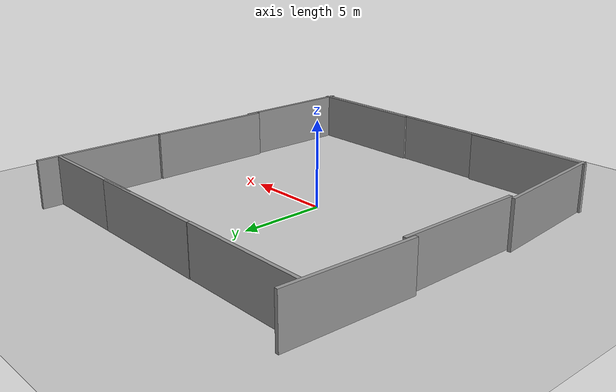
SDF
<sdf version="1.6">
 <world name="default">
  <light name="sun" type="directional">
   <pose>0 0 10 0 -0 0</pose>
   <diffuse>0.8 0.8 0.8 1</diffuse>
   <specular>0.2 0.2 0.2 1</specular>
   <attenuation>
    <range>1000</range>
    <constant>0.9</constant>
    <linear>0.01</linear>
    <quadratic>0.001</quadratic>
   </attenuation>
   <direction>-0.5 0.1 -0.9</direction>
  </light>
  <model name="ground_plane">
   <static>1</static>
   <link name="link">
    <collision name="collision">
     <geometry><plane><normal>0 0 1</normal><size>100 100</size></plane></geometry>
     <surface><friction><ode><mu>100</mu><mu2>50</mu2></ode></friction></surface>
    </collision>
    <visual name="visual">
     <cast_shadows>0</cast_shadows>
     <geometry><plane><normal>0 0 1</normal><size>100 100</size></plane></geometry>
     <material>
      <script><uri>file://media/materials/scripts/gazebo.material</uri><name>Gazebo/Grey</name></script>
     </material>
    </visual>
   </link>
  </model>
  <gravity>0 0 -9.8</gravity>
  <magnetic_field>6e-06 2.3e-05 -4.2e-05</magnetic_field>
  <atmosphere type="adiabatic"/>
  <physics name="default_physics" default="0" type="ode">
   <max_step_size>0.001</max_step_size>
   <real_time_factor>1</real_time_factor>
   <real_time_update_rate>1000</real_time_update_rate>
  </physics>
  <scene><ambient>0.4 0.4 0.4 1</ambient><background>0.7 0.7 0.7 1</background><shadows>1</shadows></scene>
  <audio><device>default</device></audio>
  <spherical_coordinates>
   <surface_model>EARTH_WGS84</surface_model>
   <latitude_deg>0</latitude_deg>
   <longitude_deg>0</longitude_deg>
   <elevation>0</elevation>
   <heading_deg>0</heading_deg>
  </spherical_coordinates>
  <model name="grey_wall_0">
   <static>1</static>
   <link name="link">
    <pose>0 0 1.4 0 -0 0</pose>
    <collision name="collision"><geometry><box><size>7.5 0.2 2.8</size></box></geometry></collision>
    <visual name="visual">
     <cast_shadows>0</cast_shadows>
     <geometry><box><size>7.5 0.2 2.8</size></box></geometry>
     <material>
      <script>
       <uri>model://grey_wall/materials/scripts</uri>
       <uri>model://grey_wall/materials/textures</uri>
       <name>vrc/grey_wall</name>
      </script>
     </material>
    </visual>
   </link>
   <pose>1.10712 10.1244 0 0 -0 0</pose>
  </model>
  <model name="grey_wall_1">
   <static>1</static>
   <link name="link">
    <pose>0 0 1.4 0 -0 0</pose>
    <collision name="collision"><geometry><box><size>7.5 0.2 2.8</size></box></geometry></collision>
    <visual name="visual">
     <cast_shadows>0</cast_shadows>
     <geometry><box><size>7.5 0.2 2.8</size></box></geometry>
     <material>
      <script>
       <uri>model://grey_wall/materials/scripts</uri>
       <uri>model://grey_wall/materials/textures</uri>
       <name>vrc/grey_wall</name>
      </script>
     </material>
    </visual>
   </link>
   <pose>6.18246 10.1172 0 0 -0 0</pose>
  </model>
  <model name="grey_wall_2">
   <static>1</static>
   <link name="link">
    <pose>0 0 1.4 0 -0 0</pose>
    <collision name="collision"><geometry><box><size>7.5 0.2 2.8</size></box></geometry></collision>
    <visual name="visual">
     <cast_shadows>0</cast_shadows>
     <geometry><box><size>7.5 0.2 2.8</size></box></geometry>
     <material>
      <script>
       <uri>model://grey_wall/materials/scripts</uri>
       <uri>model://grey_wall/materials/textures</uri>
       <name>vrc/grey_wall</name>
      </script>
     </material>
    </visual>
   </link>
   <pose>6.37038 -10.156 0 0 -0 0</pose>
  </model>
  <model name="grey_wall_3">
   <static>1</static>
   <link name="link">
    <pose>0 0 1.4 0 -0 0</pose>
    <collision name="collision"><geometry><box><size>7.5 0.2 2.8</size></box></geometry></collision>
    <visual name="visual">
     <cast_shadows>0</cast_shadows>
     <geometry><box><size>7.5 0.2 2.8</size></box></geometry>
     <material>
      <script>
       <uri>model://grey_wall/materials/scripts</uri>
       <uri>model://grey_wall/materials/textures</uri>
       <name>vrc/grey_wall</name>
      </script>
     </material>
    </visual>
   </link>
   <pose>-1.01033 -10.2644 0 0 -0 0</pose>
  </model>
  <model name="grey_wall_4">
   <static>1</static>
   <link name="link">
    <pose>0 0 1.4 0 -0 0</pose>
    <collision name="collision"><geometry><box><size>7.5 0.2 2.8</size></box></geometry></collision>
    <visual name="visual">
     <cast_shadows>0</cast_shadows>
     <geometry><box><size>7.5 0.2 2.8</size></box></geometry>
     <material>
      <script>
       <uri>model://grey_wall/materials/scripts</uri>
       <uri>model://grey_wall/materials/textures</uri>
       <name>vrc/grey_wall</name>
      </script>
     </material>
    </visual>
   </link>
   <pose>-6.44517 -10.1381 0 0 -0 0</pose>
  </model>
  <model name="grey_wall">
   <static>1</static>
   <link name="link">
    <pose>0 0 1.4 0 -0 0</pose>
    <collision name="collision"><geometry><box><size>7.5 0.2 2.8</size></box></geometry></collision>
    <visual name="visual">
     <cast_shadows>0</cast_shadows>
     <geometry><box><size>7.5 0.2 2.8</size></box></geometry>
     <material>
      <script>
       <uri>model://grey_wall/materials/scripts</uri>
       <uri>model://grey_wall/materials/textures</uri>
       <name>vrc/grey_wall</name>
      </script>
     </material>
    </visual>
   </link>
   <pose>-6.4014 10.102 0 0 -0 0</pose>
  </model>
  <model name="grey_wall_1_clone">
   <static>1</static>
   <link name="link">
    <pose>0 0 1.4 0 -0 0</pose>
    <collision name="collision"><geometry><box><size>7.5 0.2 2.8</size></box></geometry></collision>
    <visual name="visual">
     <cast_shadows>0</cast_shadows>
     <geometry><box><size>7.5 0.2 2.8</size></box></geometry>
     <material>
      <script>
       <uri>model://grey_wall/materials/scripts</uri>
       <uri>model://grey_wall/materials/textures</uri>
       <name>vrc/grey_wall</name>
      </script>
     </material>
    </visual>
   </link>
   <pose>-10.3127 7.55952 0 0 -0 1.52638</pose>
  </model>
  <model name="grey_wall_1_clone_0">
   <static>1</static>
   <link name="link">
    <pose>0 0 1.4 0 -0 0</pose>
    <collision name="collision"><geometry><box><size>7.5 0.2 2.8</size></box></geometry></collision>
    <visual name="visual">
     <cast_shadows>0</cast_shadows>
     <geometry><box><size>7.5 0.2 2.8</size></box></geometry>
     <material>
      <script>
       <uri>model://grey_wall/materials/scripts</uri>
       <uri>model://grey_wall/materials/textures</uri>
       <name>vrc/grey_wall</name>
      </script>
     </material>
    </visual>
   </link>
   <pose>-10.2477 0.552232 0 0 -0 1.55979</pose>
  </model>
  <model name="grey_wall_1_clone_1">
   <static>1</static>
   <link name="link">
    <pose>0 0 1.4 0 -0 0</pose>
    <collision name="collision"><geometry><box><size>7.5 0.2 2.8</size></box></geometry></collision>
    <visual name="visual">
     <cast_shadows>0</cast_shadows>
     <geometry><box><size>7.5 0.2 2.8</size></box></geometry>
     <material>
      <script>
       <uri>model://grey_wall/materials/scripts</uri>
       <uri>model://grey_wall/materials/textures</uri>
       <name>vrc/grey_wall</name>
      </script>
     </material>
    </visual>
   </link>
   <pose>-10.2649 -6.71029 0 0 -0 1.66034</pose>
  </model>
  <model name="grey_wall_1_clone_0_clone">
   <static>1</static>
   <link name="link">
    <pose>0 0 1.4 0 -0 0</pose>
    <collision name="collision"><geometry><box><size>7.5 0.2 2.8</size></box></geometry></collision>
    <visual name="visual">
     <cast_shadows>0</cast_shadows>
     <geometry><box><size>7.5 0.2 2.8</size></box></geometry>
     <material>
      <script>
       <uri>model://grey_wall/materials/scripts</uri>
       <uri>model://grey_wall/materials/textures</uri>
       <name>vrc/grey_wall</name>
      </script>
     </material>
    </visual>
   </link>
   <pose>9.9874 7.62265 0 0 -0 1.55979</pose>
  </model>
  <model name="grey_wall_1_clone_0_clone_0">
   <static>1</static>
   <link name="link">
    <pose>0 0 1.4 0 -0 0</pose>
    <collision name="collision"><geometry><box><size>7.5 0.2 2.8</size></box></geometry></collision>
    <visual name="visual">
     <cast_shadows>0</cast_shadows>
     <geometry><box><size>7.5 0.2 2.8</size></box></geometry>
     <material>
      <script>
       <uri>model://grey_wall/materials/scripts</uri>
       <uri>model://grey_wall/materials/textures</uri>
       <name>vrc/grey_wall</name>
      </script>
     </material>
    </visual>
   </link>
   <pose>9.86808 0.025112 0 0 -0 1.55979</pose>
  </model>
  <model name="grey_wall_1_clone_0_clone_1">
   <static>1</static>
   <link name="link">
    <pose>0 0 1.4 0 -0 0</pose>
    <collision name="collision"><geometry><box><size>7.5 0.2 2.8</size></box></geometry></collision>
    <visual name="visual">
     <cast_shadows>0</cast_shadows>
     <geometry><box><size>7.5 0.2 2.8</size></box></geometry>
     <material>
      <script>
       <uri>model://grey_wall/materials/scripts</uri>
       <uri>model://grey_wall/materials/textures</uri>
       <name>vrc/grey_wall</name>
      </script>
     </material>
    </visual>
   </link>
   <pose>9.94411 -6.80366 0 0 -0 1.55979</pose>
  </model>
 </world>
</sdf>
